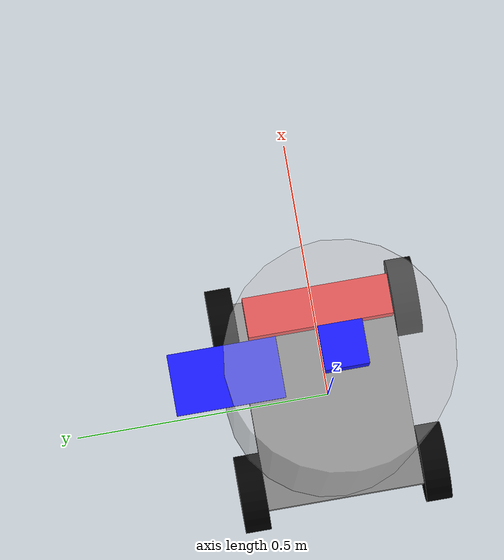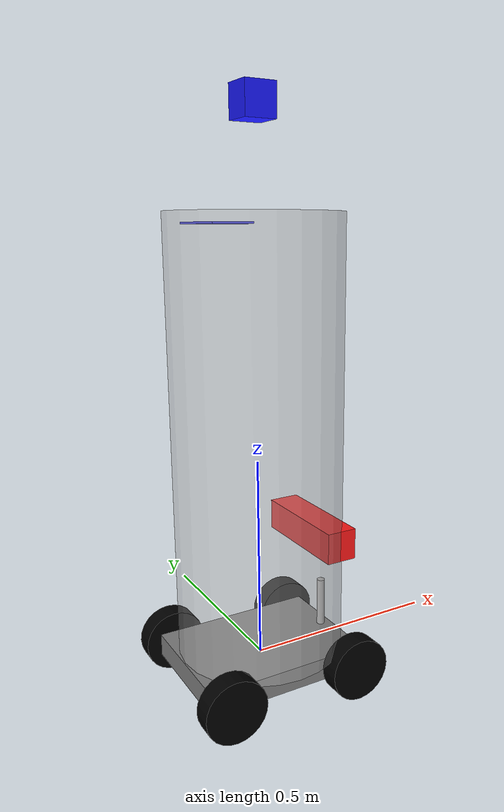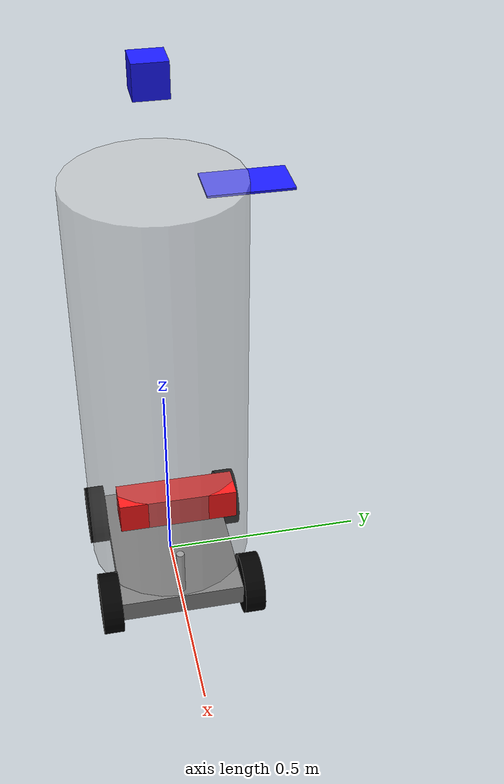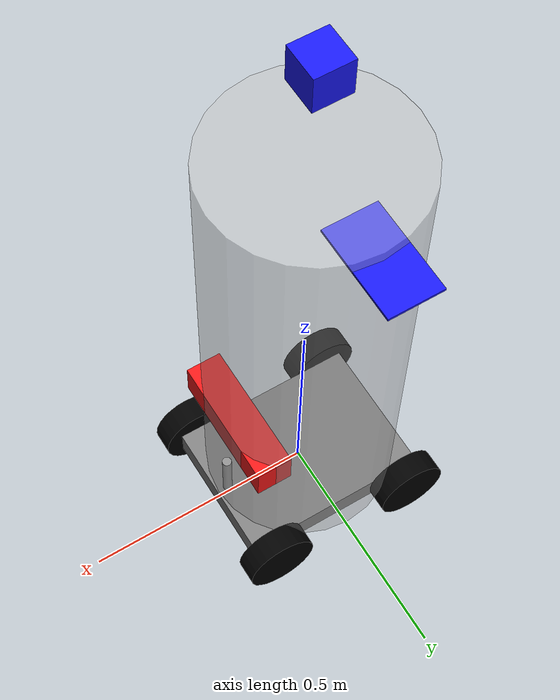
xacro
<?xml version="1.0"?>
<robot name="efim"
       xmlns:sensor="http://playerstage.sourceforge.net/gazebo/xmlschema/#sensor"
       xmlns:controller="http://playerstage.sourceforge.net/gazebo/xmlschema/#controller"
       xmlns:interface="http://playerstage.sourceforge.net/gazebo/xmlschema/#interface"
       xmlns:xacro="http://ros.org/wiki/xacro">

  <link name="base_link">
    <visual>
      <geometry>
        <box size="0.41148 0.30988 0.05588"/>
      </geometry>
      <material name="grey">
	<color rgba="0.5 0.5 0.5 1"/>
      </material>
    </visual>
    <collision>
      <geometry>
        <box size="0.41148 0.30988 0.05588"/>
      </geometry>
    </collision>
   <inertial>
      <mass value="20.0"/>
      <inertia ixx="1.0" iyy="1.0" izz="1.0"
               ixy="0" ixz="0" iyz="0"/>
    </inertial>
  </link>

  <gazebo reference="base_link">
    <material>Gazebo/Black</material>
  </gazebo>

  <link name="body_link">
    <visual>
      <geometry>
        <cylinder length="1.04775" radius="0.2032"/>
      </geometry>
      <material name="clear">
        <color rgba="0.75 0.75 0.75 0.4"/>
      </material>
    </visual>
    <inertial>
      <mass value="10.0"/>
      <inertia ixx="1.0" iyy="1.0" izz="1.0"
               ixy="0" ixz="0" iyz="0"/>
    </inertial>
  </link>

  <joint name="center_joint" type="fixed">
    <axis xyz="0 0 1"/>
    <parent link="base_link"/>
    <child link="body_link"/>
    <origin rpy="0 0 0" xyz="0 0 0.551815"/>
  </joint>

  <link name="camera_link">
    <visual>
      <origin rpy="0 0 0"/>
      <geometry>
        <box size="0.0762 0.2794 0.0762"/>
      </geometry>
      <material name="red">
	<color rgba="1 0.1 0.1 1"/>
      </material>
    </visual>
   <inertial>
      <mass value="0.25"/>
      <inertia ixx="1.0" iyy="1.0" izz="1.0"
               ixy="0" ixz="0" iyz="0"/>
    </inertial>
  </link>

  <joint name="camera_joint" type="fixed">
    <axis xyz="0 0 0"/>
    <parent link="body_link"/>
    <child link="camera_link"/>
    <origin rpy="0 0 0" xyz="0.15 0 -0.25"/>
  </joint>

	<joint name="camera_depth_joint" type="fixed">
	  <origin xyz="0 0 0" rpy="0 0 0" />
	  <parent link="camera_link" />
	  <child link="camera_depth_frame" />
	</joint>
	<link name="camera_depth_frame"/>

	<joint name="camera_depth_optical_joint" type="fixed">
	  <origin xyz="0 0 0" rpy="0 0 0" />
	  <parent link="camera_link" />
	  <child link="camera_depth_optical_frame" />
	</joint>
	<link name="camera_depth_optical_frame"/>

  <link name="laser">
    <visual>
      <geometry>
        <box size="0.0762 0.0762 0.0762"/>
      </geometry>
      <material name="blue">
	<color rgba="0.1 0.1 1 1"/>
      </material>
    </visual>
   <inertial>
      <mass value="0.25"/>
      <inertia ixx="1.0" iyy="1.0" izz="1.0"
               ixy="0" ixz="0" iyz="0"/>
    </inertial>
  </link>

  <joint name="laser_joint" type="fixed">
    <axis xyz="0 0 1"/>
    <parent link="body_link"/>
    <child link="laser"/>
    <origin rpy="0 0 0" xyz="0.0 0 0.75"/>
  </joint>

  <link name="pocketbot">
    <visual>
      <geometry>
        <box size="0.1080 0.1920 0.005"/>
      </geometry>
      <material name="red">
	<color rgba="0.1 0.1 1 1"/>
      </material>
    </visual>
   <inertial>
      <mass value="0.25"/>
      <inertia ixx="1.0" iyy="1.0" izz="1.0"
               ixy="0" ixz="0" iyz="0"/>
    </inertial>
  </link>

  <joint name="pocketbot_joint" type="continuous">
    <axis xyz="0 0 1"/>
    <parent link="body_link"/>
    <child link="pocketbot"/>
    <origin rpy="0 0 0" xyz="0.0 0.2 0.5"/>
  </joint>

  <link name="hitch_front_link">
    <visual>
      <geometry>
        <cylinder length="0.1524" radius="0.01"/>
      </geometry>
      <material name="silver">
	<color rgba="0.75 0.75 0.75 1"/>
      </material>
    </visual>
    <collision>
      <geometry>
        <cylinder length="0.1524" radius="0.01"/>
      </geometry>
    </collision>
    <inertial>
      <mass value="0.1"/>
      <inertia ixx="1.0" iyy="1.0" izz="1.0"
               ixy="0" ixz="0" iyz="0"/>
    </inertial>
  </link>

  <joint name="hitch_joint" type="fixed">
    <axis xyz="0 0 1"/>
    <parent link="base_link"/>
    <child link="hitch_front_link"/>
    <origin rpy="0 0 0" xyz="0.18 0 0.0762"/>
  </joint>

  <link name="wheel_front_left">
    <visual>
      <geometry>
        <cylinder length="0.0508" radius="0.0762"/>
      </geometry>
      <material name="black">
        <color rgba="0 0 0 1"/>
      </material>
    </visual>
    <collision>
      <geometry>
        <cylinder length="0.0508" radius="0.0762"/>
      </geometry>
    </collision>
    <inertial>
      <mass value="0.1"/>
      <inertia ixx="1.0" iyy="1.0" izz="1.0"
               ixy="0" ixz="0" iyz="0"/>
    </inertial>
  </link>

  <joint name="axis_front_left" type="continuous">
    <axis xyz="0 0 1"/>
    <parent link="base_link"/>
    <child link="wheel_front_left"/>
    <origin rpy="-1.5708 0 0" xyz="0.165862 0.18034 0"/>
  </joint>

 <link name="wheel_front_right">
    <visual>
      <geometry>
        <cylinder length="0.0508" radius="0.0762"/>
      </geometry>
      <material name="black"/>
    </visual>
    <collision>
      <geometry>
        <cylinder length="0.0508" radius="0.0762"/>
      </geometry>
    </collision>
    <inertial>
      <mass value="0.1"/>
      <inertia ixx="1.0" iyy="1.0" izz="1.0"
               ixy="0" ixz="0" iyz="0"/>
    </inertial>
  </link>

  <joint name="axis_front_right" type="continuous">
    <axis xyz="0 0 1"/>
    <parent link="base_link"/>
    <child link="wheel_front_right"/>
    <origin rpy="-1.5708 0 0" xyz="0.165862 -0.18034 0"/>
  </joint>

  <link name="wheel_rear_right">
    <visual>
      <geometry>
        <cylinder length="0.0508" radius="0.0762"/>
      </geometry>
      <material name="black"/>
    </visual>
    <collision>
      <geometry>
        <cylinder length="0.0508" radius="0.0762"/>
      </geometry>
    </collision>
    <inertial>
      <mass value="0.1"/>
      <inertia ixx="1.0" iyy="1.0" izz="1.0"
               ixy="0" ixz="0" iyz="0"/>
    </inertial>
  </link>

  <joint name="axis_rear_right" type="continuous">
    <axis xyz="0 0 1"/>
    <parent link="base_link"/>
    <child link="wheel_rear_right"/>
    <origin rpy="-1.5708 0 0" xyz="-0.165862 -0.18034 0"/>
  </joint>

  <link name="wheel_rear_left">
    <visual>
      <geometry>
        <cylinder length="0.0508" radius="0.0762"/>
      </geometry>
      <material name="black"/>
    </visual>
    <collision>
      <geometry>
        <cylinder length="0.0508" radius="0.0762"/>
      </geometry>
    </collision>
    <inertial>
      <mass value="0.1"/>
      <inertia ixx="1.0" iyy="1.0" izz="1.0"
               ixy="0" ixz="0" iyz="0"/>
    </inertial>
    <gazebo reference="wheel_rear_left">
      <material>Gazebo/Black</material>
    </gazebo>
  </link>

  <joint name="axis_rear_left" type="continuous">
    <axis xyz="0 0 1"/>
    <parent link="base_link"/>
    <child link="wheel_rear_left"/>
    <origin rpy="-1.5708 0 0" xyz="-0.165862 0.18034 0"/>
  </joint>

  <gazebo>
    <plugin name="differential_drive_controller" filename="libgazebo_ros_diff_drive.so">
      <alwaysOn>true</alwaysOn>
      <updateRate>20</updateRate>
      <leftJoint>axis_front_left</leftJoint>
      <rightJoint>axis_front_right</rightJoint>
      <wheelSeparation>0.254</wheelSeparation>
      <wheelDiameter>0.1524</wheelDiameter>
      <torque>20</torque>
      <commandTopic>pocketbot/cmd_vel</commandTopic>
      <odometryTopic>odom</odometryTopic>
      <odometryFrame>odom</odometryFrame>
      <robotBaseFrame>base_link</robotBaseFrame>
    </plugin>
  </gazebo>

<gazebo reference="laser">
    <material>Gazebo/Blue</material>
    <sensor type="ray" name="head_hokuyo_sensor">
      <pose>0 0 0 0 0 0</pose>
      <visualize>false</visualize>
      <update_rate>40</update_rate>
      <ray>
        <scan>
          <horizontal>
            <samples>720</samples>
            <resolution>1</resolution>
            <min_angle>-1.570795</min_angle>
            <max_angle>1.570795</max_angle>
          </horizontal>
        </scan>
        <range>
          <min>0.10</min>
          <max>30.0</max>
          <resolution>0.01</resolution>
        </range>
        <noise>
          <type>gaussian</type>
          <mean>0.0</mean>
          <stddev>0.01</stddev>
        </noise>
      </ray>
      <plugin name="gazebo_ros_head_hokuyo_controller" filename="libgazebo_ros_laser.so">
        <topicName>/scan</topicName>
        <frameName>laser</frameName>
      </plugin>
    </sensor>
  </gazebo>

  <gazebo reference="camera_link">
    <material>Gazebo/Blue</material>
    <sensor type="depth" name="camera">
        <always_on>true</always_on>
        <update_rate>20.0</update_rate>
        <visualize>true</visualize>
        <camera>
            <horizontal_fov>1.046666667</horizontal_fov>
            <image>
                <width>640</width>
                <height>480</height>
                <format>B8G8R8</format>
            </image>
            <depth_camera>

            </depth_camera>
            <clip>
                <near>0.05</near>
                <far>8.0</far>
            </clip>
        </camera>
        <plugin name="kinect_camera_controller" filename="libgazebo_ros_openni_kinect.so">
            <cameraName>camera</cameraName>
            <alwaysOn>true</alwaysOn>
            <updateRate>10.0</updateRate>
            <frameName>camera_link</frameName>
            <imageTopicName>rgb/image_rect_color</imageTopicName>
            <depthImageTopicName>depth_registered/image_raw</depthImageTopicName>
            <pointCloudTopicName>depth/points</pointCloudTopicName>
            <cameraInfoTopicName>rgb/camera_info</cameraInfoTopicName>
            <depthImageCameraInfoTopicName>depth/camera_info</depthImageCameraInfoTopicName>
          <baseline>0.1</baseline>
          <distortion_k1>0.0</distortion_k1>
          <distortion_k2>0.0</distortion_k2>
          <distortion_k3>0.0</distortion_k3>
          <distortion_t1>0.0</distortion_t1>
          <distortion_t2>0.0</distortion_t2>
          <pointCloudCutoff>0.4</pointCloudCutoff>
        </plugin>
    </sensor>
</gazebo>

</robot>
